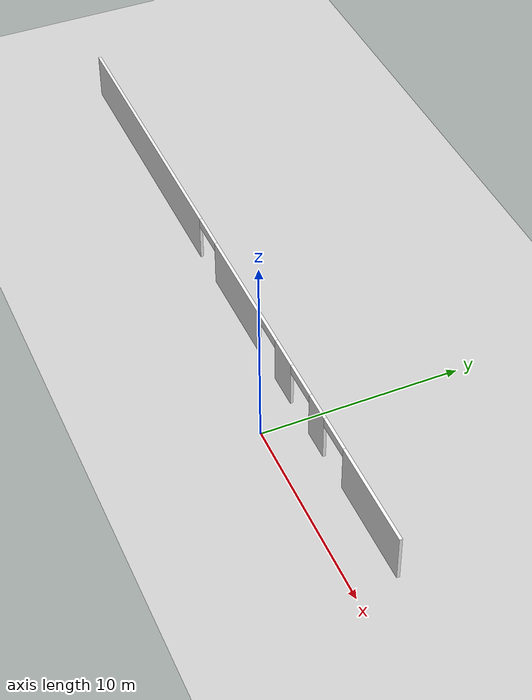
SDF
<sdf version="1.6">
 <world name="default">
  <model name="ground_plane">
   <static>1</static>
   <link name="link">
    <collision name="collision">
     <geometry><plane><normal>0 0 1</normal><size>5000 5000</size></plane></geometry>
     <surface><friction><ode><mu>1</mu><mu2>2</mu2></ode></friction></surface>
    </collision>
    <visual name="runway">
     <cast_shadows>0</cast_shadows>
     <geometry><plane><normal>0 0 1</normal><size>700 700</size></plane></geometry>
     <material>
      <script><uri>file://media/materials/scripts/gazebo.material</uri><name>Gazebo/Gray</name></script>
     </material>
    </visual>
   </link>
  </model>
  <model name="wall_with_door">
   <link name="Wall_2">
    <inertial>
     <mass>1</mass>
     <inertia><ixx>1</ixx><ixy>0</ixy><ixz>0</ixz><iyy>1</iyy><iyz>0</iyz><izz>1</izz></inertia>
    </inertial>
    <visual name="Wall_2_Visual_3">
     <pose>-20.8175 0 1.25 0 -0 0</pose>
     <geometry><box><size>1.549 0.15 2.5</size></box></geometry>
     <material>
      <script>
       <uri>model://floor/materials/scripts</uri>
       <uri>model://floor/materials/textures</uri>
       <name>floor</name>
      </script>
      <ambient>1 1 1 1</ambient>
      <shader type="vertex"><normal_map>__default__</normal_map></shader>
      <diffuse>1 1 1 1</diffuse>
      <specular>0 0 0 1</specular>
      <emissive>0 0 0 1</emissive>
     </material>
     <meta><layer>0</layer></meta>
    </visual>
    <visual name="Door_2_Visual_0">
     <pose>-33.729 0 2.25 0 -0 0</pose>
     <geometry><box><size>2 0.15 0.5</size></box></geometry>
     <material>
      <script>
       <uri>model://floor/materials/scripts</uri>
       <uri>model://floor/materials/textures</uri>
       <name>floor</name>
      </script>
      <ambient>1 1 1 1</ambient>
      <shader type="vertex"><normal_map>__default__</normal_map></shader>
      <diffuse>1 1 1 1</diffuse>
      <specular>0 0 0 1</specular>
      <emissive>0 0 0 1</emissive>
     </material>
     <meta><layer>0</layer></meta>
    </visual>
    <visual name="Door_2_Visual_2">
     <pose>-22.592 0 2.25 0 -0 0</pose>
     <geometry><box><size>2 0.15 0.5</size></box></geometry>
     <material>
      <script>
       <uri>model://floor/materials/scripts</uri>
       <uri>model://floor/materials/textures</uri>
       <name>floor</name>
      </script>
      <ambient>1 1 1 1</ambient>
      <shader type="vertex"><normal_map>__default__</normal_map></shader>
      <diffuse>1 1 1 1</diffuse>
      <specular>0 0 0 1</specular>
      <emissive>0 0 0 1</emissive>
     </material>
     <meta><layer>0</layer></meta>
    </visual>
    <visual name="Door_2_Visual_1">
     <pose>-26.352 0 2.25 0 -0 0</pose>
     <geometry><box><size>2 0.15 0.5</size></box></geometry>
     <material>
      <script>
       <uri>model://floor/materials/scripts</uri>
       <uri>model://floor/materials/textures</uri>
       <name>floor</name>
      </script>
      <ambient>1 1 1 1</ambient>
      <shader type="vertex"><normal_map>__default__</normal_map></shader>
      <diffuse>1 1 1 1</diffuse>
      <specular>0 0 0 1</specular>
      <emissive>0 0 0 1</emissive>
     </material>
     <meta><layer>0</layer></meta>
    </visual>
    <visual name="Wall_2_Visual_0">
     <pose>-42.3645 0 1.25 0 -0 0</pose>
     <geometry><box><size>15.271 0.15 2.5</size></box></geometry>
     <material>
      <script>
       <uri>model://floor/materials/scripts</uri>
       <uri>model://floor/materials/textures</uri>
       <name>floor</name>
      </script>
      <ambient>1 1 1 1</ambient>
      <shader type="vertex"><normal_map>__default__</normal_map></shader>
      <diffuse>1 1 1 1</diffuse>
      <specular>0 0 0 1</specular>
      <emissive>0 0 0 1</emissive>
     </material>
     <meta><layer>0</layer></meta>
    </visual>
    <visual name="Wall_2_Visual_2">
     <pose>-24.472 0 1.25 0 -0 0</pose>
     <geometry><box><size>1.76 0.15 2.5</size></box></geometry>
     <material>
      <script>
       <uri>model://floor/materials/scripts</uri>
       <uri>model://floor/materials/textures</uri>
       <name>floor</name>
      </script>
      <ambient>1 1 1 1</ambient>
      <shader type="vertex"><normal_map>__default__</normal_map></shader>
      <diffuse>1 1 1 1</diffuse>
      <specular>0 0 0 1</specular>
      <emissive>0 0 0 1</emissive>
     </material>
     <meta><layer>0</layer></meta>
    </visual>
    <visual name="ModelPreview_10::Wall_2::visual_19">
     <pose>-15.4 0 1.25 0 -0 0</pose>
     <geometry><box><size>5.377 0.15 2.5</size></box></geometry>
     <material>
      <script>
       <uri>model://floor/materials/scripts</uri>
       <uri>model://floor/materials/textures</uri>
       <name>floor</name>
      </script>
      <ambient>1 1 1 1</ambient>
      <shader type="vertex"><normal_map>__default__</normal_map></shader>
      <diffuse>1 1 1 1</diffuse>
      <specular>0 0 0 1</specular>
      <emissive>0 0 0 1</emissive>
     </material>
     <meta><layer>0</layer></meta>
    </visual>
    <visual name="Door_2_Visual_3">
     <pose>-19.043 0 2.25 0 -0 0</pose>
     <geometry><box><size>2 0.15 0.5</size></box></geometry>
     <material>
      <script>
       <uri>model://floor/materials/scripts</uri>
       <uri>model://floor/materials/textures</uri>
       <name>floor</name>
      </script>
      <ambient>1 1 1 1</ambient>
      <shader type="vertex"><normal_map>__default__</normal_map></shader>
      <diffuse>1 1 1 1</diffuse>
      <specular>0 0 0 1</specular>
      <emissive>0 0 0 1</emissive>
     </material>
     <meta><layer>0</layer></meta>
    </visual>
    <visual name="Wall_2_Visual_1">
     <pose>-30.0405 0 1.25 0 -0 0</pose>
     <geometry><box><size>5.377 0.15 2.5</size></box></geometry>
     <material>
      <script>
       <uri>model://floor/materials/scripts</uri>
       <uri>model://floor/materials/textures</uri>
       <name>floor</name>
      </script>
      <ambient>1 1 1 1</ambient>
      <shader type="vertex"><normal_map>__default__</normal_map></shader>
      <diffuse>1 1 1 1</diffuse>
      <specular>0 0 0 1</specular>
      <emissive>0 0 0 1</emissive>
     </material>
     <meta><layer>0</layer></meta>
    </visual>
    <collision name="Wall_2_Collision_2">
     <pose>-24.472 0 1.25 0 -0 0</pose>
     <geometry><box><size>1.76 0.15 2.5</size></box></geometry>
     <surface>
      <friction>
       <ode><mu>1</mu><mu2>1</mu2><fdir1>0 0 0</fdir1><slip1>0</slip1><slip2>0</slip2></ode>
       <torsional>
        <coefficient>1</coefficient>
        <patch_radius>0</patch_radius>
        <surface_radius>0</surface_radius>
        <use_patch_radius>1</use_patch_radius>
        <ode><slip>0</slip></ode>
       </torsional>
      </friction>
      <bounce><restitution_coefficient>0</restitution_coefficient><threshold>1e+06</threshold></bounce>
      <contact>
       <collide_without_contact>0</collide_without_contact>
       <collide_without_contact_bitmask>1</collide_without_contact_bitmask>
       <collide_bitmask>1</collide_bitmask>
       <ode>
        <soft_cfm>0</soft_cfm>
        <soft_erp>0.2</soft_erp>
        <kp>1e+13</kp>
        <kd>1</kd>
        <max_vel>0.01</max_vel>
        <min_depth>0</min_depth>
       </ode>
       <bullet>
        <split_impulse>1</split_impulse>
        <split_impulse_penetration_threshold>-0.01</split_impulse_penetration_threshold>
        <soft_cfm>0</soft_cfm>
        <soft_erp>0.2</soft_erp>
        <kp>1e+13</kp>
        <kd>1</kd>
       </bullet>
      </contact>
     </surface>
    </collision>
    <collision name="Wall_2_Collision_9">
     <pose>50.4005 0 1.25 0 -0 0</pose>
     <geometry><box><size>5.395 0.15 2.5</size></box></geometry>
     <surface>
      <friction>
       <ode><mu>1</mu><mu2>1</mu2><fdir1>0 0 0</fdir1><slip1>0</slip1><slip2>0</slip2></ode>
       <torsional>
        <coefficient>1</coefficient>
        <patch_radius>0</patch_radius>
        <surface_radius>0</surface_radius>
        <use_patch_radius>1</use_patch_radius>
        <ode><slip>0</slip></ode>
       </torsional>
      </friction>
      <bounce><restitution_coefficient>0</restitution_coefficient><threshold>1e+06</threshold></bounce>
      <contact>
       <collide_without_contact>0</collide_without_contact>
       <collide_without_contact_bitmask>1</collide_without_contact_bitmask>
       <collide_bitmask>1</collide_bitmask>
       <ode>
        <soft_cfm>0</soft_cfm>
        <soft_erp>0.2</soft_erp>
        <kp>1e+13</kp>
        <kd>1</kd>
        <max_vel>0.01</max_vel>
        <min_depth>0</min_depth>
       </ode>
       <bullet>
        <split_impulse>1</split_impulse>
        <split_impulse_penetration_threshold>-0.01</split_impulse_penetration_threshold>
        <soft_cfm>0</soft_cfm>
        <soft_erp>0.2</soft_erp>
        <kp>1e+13</kp>
        <kd>1</kd>
       </bullet>
      </contact>
     </surface>
    </collision>
    <collision name="Wall_2_Collision_8">
     <pose>45.239 0 1.25 0 -0 0</pose>
     <geometry><box><size>0.928 0.15 2.5</size></box></geometry>
     <surface>
      <friction>
       <ode><mu>1</mu><mu2>1</mu2><fdir1>0 0 0</fdir1><slip1>0</slip1><slip2>0</slip2></ode>
       <torsional>
        <coefficient>1</coefficient>
        <patch_radius>0</patch_radius>
        <surface_radius>0</surface_radius>
        <use_patch_radius>1</use_patch_radius>
        <ode><slip>0</slip></ode>
       </torsional>
      </friction>
      <bounce><restitution_coefficient>0</restitution_coefficient><threshold>1e+06</threshold></bounce>
      <contact>
       <collide_without_contact>0</collide_without_contact>
       <collide_without_contact_bitmask>1</collide_without_contact_bitmask>
       <collide_bitmask>1</collide_bitmask>
       <ode>
        <soft_cfm>0</soft_cfm>
        <soft_erp>0.2</soft_erp>
        <kp>1e+13</kp>
        <kd>1</kd>
        <max_vel>0.01</max_vel>
        <min_depth>0</min_depth>
       </ode>
       <bullet>
        <split_impulse>1</split_impulse>
        <split_impulse_penetration_threshold>-0.01</split_impulse_penetration_threshold>
        <soft_cfm>0</soft_cfm>
        <soft_erp>0.2</soft_erp>
        <kp>1e+13</kp>
        <kd>1</kd>
       </bullet>
      </contact>
     </surface>
    </collision>
    <collision name="Wall_2_Collision_3">
     <pose>-20.8175 0 1.25 0 -0 0</pose>
     <geometry><box><size>1.549 0.15 2.5</size></box></geometry>
     <surface>
      <friction>
       <ode><mu>1</mu><mu2>1</mu2><fdir1>0 0 0</fdir1><slip1>0</slip1><slip2>0</slip2></ode>
       <torsional>
        <coefficient>1</coefficient>
        <patch_radius>0</patch_radius>
        <surface_radius>0</surface_radius>
        <use_patch_radius>1</use_patch_radius>
        <ode><slip>0</slip></ode>
       </torsional>
      </friction>
      <bounce><restitution_coefficient>0</restitution_coefficient><threshold>1e+06</threshold></bounce>
      <contact>
       <collide_without_contact>0</collide_without_contact>
       <collide_without_contact_bitmask>1</collide_without_contact_bitmask>
       <collide_bitmask>1</collide_bitmask>
       <ode>
        <soft_cfm>0</soft_cfm>
        <soft_erp>0.2</soft_erp>
        <kp>1e+13</kp>
        <kd>1</kd>
        <max_vel>0.01</max_vel>
        <min_depth>0</min_depth>
       </ode>
       <bullet>
        <split_impulse>1</split_impulse>
        <split_impulse_penetration_threshold>-0.01</split_impulse_penetration_threshold>
        <soft_cfm>0</soft_cfm>
        <soft_erp>0.2</soft_erp>
        <kp>1e+13</kp>
        <kd>1</kd>
       </bullet>
      </contact>
     </surface>
    </collision>
    <collision name="Wall_2_Collision_5">
     <pose>26.519 0 1.25 0 -0 0</pose>
     <geometry><box><size>4.382 0.15 2.5</size></box></geometry>
     <surface>
      <friction>
       <ode><mu>1</mu><mu2>1</mu2><fdir1>0 0 0</fdir1><slip1>0</slip1><slip2>0</slip2></ode>
       <torsional>
        <coefficient>1</coefficient>
        <patch_radius>0</patch_radius>
        <surface_radius>0</surface_radius>
        <use_patch_radius>1</use_patch_radius>
        <ode><slip>0</slip></ode>
       </torsional>
      </friction>
      <bounce><restitution_coefficient>0</restitution_coefficient><threshold>1e+06</threshold></bounce>
      <contact>
       <collide_without_contact>0</collide_without_contact>
       <collide_without_contact_bitmask>1</collide_without_contact_bitmask>
       <collide_bitmask>1</collide_bitmask>
       <ode>
        <soft_cfm>0</soft_cfm>
        <soft_erp>0.2</soft_erp>
        <kp>1e+13</kp>
        <kd>1</kd>
        <max_vel>0.01</max_vel>
        <min_depth>0</min_depth>
       </ode>
       <bullet>
        <split_impulse>1</split_impulse>
        <split_impulse_penetration_threshold>-0.01</split_impulse_penetration_threshold>
        <soft_cfm>0</soft_cfm>
        <soft_erp>0.2</soft_erp>
        <kp>1e+13</kp>
        <kd>1</kd>
       </bullet>
      </contact>
     </surface>
    </collision>
    <collision name="Wall_2_Collision_6">
     <pose>35.369 0 1.25 0 -0 0</pose>
     <geometry><box><size>9.318 0.15 2.5</size></box></geometry>
     <surface>
      <friction>
       <ode><mu>1</mu><mu2>1</mu2><fdir1>0 0 0</fdir1><slip1>0</slip1><slip2>0</slip2></ode>
       <torsional>
        <coefficient>1</coefficient>
        <patch_radius>0</patch_radius>
        <surface_radius>0</surface_radius>
        <use_patch_radius>1</use_patch_radius>
        <ode><slip>0</slip></ode>
       </torsional>
      </friction>
      <bounce><restitution_coefficient>0</restitution_coefficient><threshold>1e+06</threshold></bounce>
      <contact>
       <collide_without_contact>0</collide_without_contact>
       <collide_without_contact_bitmask>1</collide_without_contact_bitmask>
       <collide_bitmask>1</collide_bitmask>
       <ode>
        <soft_cfm>0</soft_cfm>
        <soft_erp>0.2</soft_erp>
        <kp>1e+13</kp>
        <kd>1</kd>
        <max_vel>0.01</max_vel>
        <min_depth>0</min_depth>
       </ode>
       <bullet>
        <split_impulse>1</split_impulse>
        <split_impulse_penetration_threshold>-0.01</split_impulse_penetration_threshold>
        <soft_cfm>0</soft_cfm>
        <soft_erp>0.2</soft_erp>
        <kp>1e+13</kp>
        <kd>1</kd>
       </bullet>
      </contact>
     </surface>
    </collision>
    <collision name="Wall_2_Collision_4">
     <pose>2.1425 0 1.25 0 -0 0</pose>
     <geometry><box><size>40.371 0.15 2.5</size></box></geometry>
     <surface>
      <friction>
       <ode><mu>1</mu><mu2>1</mu2><fdir1>0 0 0</fdir1><slip1>0</slip1><slip2>0</slip2></ode>
       <torsional>
        <coefficient>1</coefficient>
        <patch_radius>0</patch_radius>
        <surface_radius>0</surface_radius>
        <use_patch_radius>1</use_patch_radius>
        <ode><slip>0</slip></ode>
       </torsional>
      </friction>
      <bounce><restitution_coefficient>0</restitution_coefficient><threshold>1e+06</threshold></bounce>
      <contact>
       <collide_without_contact>0</collide_without_contact>
       <collide_without_contact_bitmask>1</collide_without_contact_bitmask>
       <collide_bitmask>1</collide_bitmask>
       <ode>
        <soft_cfm>0</soft_cfm>
        <soft_erp>0.2</soft_erp>
        <kp>1e+13</kp>
        <kd>1</kd>
        <max_vel>0.01</max_vel>
        <min_depth>0</min_depth>
       </ode>
       <bullet>
        <split_impulse>1</split_impulse>
        <split_impulse_penetration_threshold>-0.01</split_impulse_penetration_threshold>
        <soft_cfm>0</soft_cfm>
        <soft_erp>0.2</soft_erp>
        <kp>1e+13</kp>
        <kd>1</kd>
       </bullet>
      </contact>
     </surface>
    </collision>
    <collision name="Wall_2_Collision_0">
     <pose>-42.3645 0 1.25 0 -0 0</pose>
     <geometry><box><size>15.271 0.15 2.5</size></box></geometry>
     <surface>
      <friction>
       <ode><mu>1</mu><mu2>1</mu2><fdir1>0 0 0</fdir1><slip1>0</slip1><slip2>0</slip2></ode>
       <torsional>
        <coefficient>1</coefficient>
        <patch_radius>0</patch_radius>
        <surface_radius>0</surface_radius>
        <use_patch_radius>1</use_patch_radius>
        <ode><slip>0</slip></ode>
       </torsional>
      </friction>
      <bounce><restitution_coefficient>0</restitution_coefficient><threshold>1e+06</threshold></bounce>
      <contact>
       <collide_without_contact>0</collide_without_contact>
       <collide_without_contact_bitmask>1</collide_without_contact_bitmask>
       <collide_bitmask>1</collide_bitmask>
       <ode>
        <soft_cfm>0</soft_cfm>
        <soft_erp>0.2</soft_erp>
        <kp>1e+13</kp>
        <kd>1</kd>
        <max_vel>0.01</max_vel>
        <min_depth>0</min_depth>
       </ode>
       <bullet>
        <split_impulse>1</split_impulse>
        <split_impulse_penetration_threshold>-0.01</split_impulse_penetration_threshold>
        <soft_cfm>0</soft_cfm>
        <soft_erp>0.2</soft_erp>
        <kp>1e+13</kp>
        <kd>1</kd>
       </bullet>
      </contact>
     </surface>
    </collision>
    <collision name="Wall_2_Collision_7">
     <pose>42.4015 0 1.25 0 -0 0</pose>
     <geometry><box><size>0.747 0.15 2.5</size></box></geometry>
     <surface>
      <friction>
       <ode><mu>1</mu><mu2>1</mu2><fdir1>0 0 0</fdir1><slip1>0</slip1><slip2>0</slip2></ode>
       <torsional>
        <coefficient>1</coefficient>
        <patch_radius>0</patch_radius>
        <surface_radius>0</surface_radius>
        <use_patch_radius>1</use_patch_radius>
        <ode><slip>0</slip></ode>
       </torsional>
      </friction>
      <bounce><restitution_coefficient>0</restitution_coefficient><threshold>1e+06</threshold></bounce>
      <contact>
       <collide_without_contact>0</collide_without_contact>
       <collide_without_contact_bitmask>1</collide_without_contact_bitmask>
       <collide_bitmask>1</collide_bitmask>
       <ode>
        <soft_cfm>0</soft_cfm>
        <soft_erp>0.2</soft_erp>
        <kp>1e+13</kp>
        <kd>1</kd>
        <max_vel>0.01</max_vel>
        <min_depth>0</min_depth>
       </ode>
       <bullet>
        <split_impulse>1</split_impulse>
        <split_impulse_penetration_threshold>-0.01</split_impulse_penetration_threshold>
        <soft_cfm>0</soft_cfm>
        <soft_erp>0.2</soft_erp>
        <kp>1e+13</kp>
        <kd>1</kd>
       </bullet>
      </contact>
     </surface>
    </collision>
    <collision name="Wall_2_Collision_1">
     <pose>-30.0405 0 1.25 0 -0 0</pose>
     <geometry><box><size>5.377 0.15 2.5</size></box></geometry>
     <surface>
      <friction>
       <ode><mu>1</mu><mu2>1</mu2><fdir1>0 0 0</fdir1><slip1>0</slip1><slip2>0</slip2></ode>
       <torsional>
        <coefficient>1</coefficient>
        <patch_radius>0</patch_radius>
        <surface_radius>0</surface_radius>
        <use_patch_radius>1</use_patch_radius>
        <ode><slip>0</slip></ode>
       </torsional>
      </friction>
      <bounce><restitution_coefficient>0</restitution_coefficient><threshold>1e+06</threshold></bounce>
      <contact>
       <collide_without_contact>0</collide_without_contact>
       <collide_without_contact_bitmask>1</collide_without_contact_bitmask>
       <collide_bitmask>1</collide_bitmask>
       <ode>
        <soft_cfm>0</soft_cfm>
        <soft_erp>0.2</soft_erp>
        <kp>1e+13</kp>
        <kd>1</kd>
        <max_vel>0.01</max_vel>
        <min_depth>0</min_depth>
       </ode>
       <bullet>
        <split_impulse>1</split_impulse>
        <split_impulse_penetration_threshold>-0.01</split_impulse_penetration_threshold>
        <soft_cfm>0</soft_cfm>
        <soft_erp>0.2</soft_erp>
        <kp>1e+13</kp>
        <kd>1</kd>
       </bullet>
      </contact>
     </surface>
    </collision>
    <collision name="Door_2_Collision_0">
     <pose>-33.729 0 2.25 0 -0 0</pose>
     <geometry><box><size>2 0.15 0.5</size></box></geometry>
     <surface>
      <friction>
       <ode><mu>1</mu><mu2>1</mu2><fdir1>0 0 0</fdir1><slip1>0</slip1><slip2>0</slip2></ode>
       <torsional>
        <coefficient>1</coefficient>
        <patch_radius>0</patch_radius>
        <surface_radius>0</surface_radius>
        <use_patch_radius>1</use_patch_radius>
        <ode><slip>0</slip></ode>
       </torsional>
      </friction>
      <bounce><restitution_coefficient>0</restitution_coefficient><threshold>1e+06</threshold></bounce>
      <contact>
       <collide_without_contact>0</collide_without_contact>
       <collide_without_contact_bitmask>1</collide_without_contact_bitmask>
       <collide_bitmask>1</collide_bitmask>
       <ode>
        <soft_cfm>0</soft_cfm>
        <soft_erp>0.2</soft_erp>
        <kp>1e+13</kp>
        <kd>1</kd>
        <max_vel>0.01</max_vel>
        <min_depth>0</min_depth>
       </ode>
       <bullet>
        <split_impulse>1</split_impulse>
        <split_impulse_penetration_threshold>-0.01</split_impulse_penetration_threshold>
        <soft_cfm>0</soft_cfm>
        <soft_erp>0.2</soft_erp>
        <kp>1e+13</kp>
        <kd>1</kd>
       </bullet>
      </contact>
     </surface>
    </collision>
    <collision name="Door_2_Collision_1">
     <pose>-26.352 0 2.25 0 -0 0</pose>
     <geometry><box><size>2 0.15 0.5</size></box></geometry>
     <surface>
      <friction>
       <ode><mu>1</mu><mu2>1</mu2><fdir1>0 0 0</fdir1><slip1>0</slip1><slip2>0</slip2></ode>
       <torsional>
        <coefficient>1</coefficient>
        <patch_radius>0</patch_radius>
        <surface_radius>0</surface_radius>
        <use_patch_radius>1</use_patch_radius>
        <ode><slip>0</slip></ode>
       </torsional>
      </friction>
      <bounce><restitution_coefficient>0</restitution_coefficient><threshold>1e+06</threshold></bounce>
      <contact>
       <collide_without_contact>0</collide_without_contact>
       <collide_without_contact_bitmask>1</collide_without_contact_bitmask>
       <collide_bitmask>1</collide_bitmask>
       <ode>
        <soft_cfm>0</soft_cfm>
        <soft_erp>0.2</soft_erp>
        <kp>1e+13</kp>
        <kd>1</kd>
        <max_vel>0.01</max_vel>
        <min_depth>0</min_depth>
       </ode>
       <bullet>
        <split_impulse>1</split_impulse>
        <split_impulse_penetration_threshold>-0.01</split_impulse_penetration_threshold>
        <soft_cfm>0</soft_cfm>
        <soft_erp>0.2</soft_erp>
        <kp>1e+13</kp>
        <kd>1</kd>
       </bullet>
      </contact>
     </surface>
    </collision>
    <collision name="Door_2_Collision_2">
     <pose>-22.592 0 2.25 0 -0 0</pose>
     <geometry><box><size>2 0.15 0.5</size></box></geometry>
     <surface>
      <friction>
       <ode><mu>1</mu><mu2>1</mu2><fdir1>0 0 0</fdir1><slip1>0</slip1><slip2>0</slip2></ode>
       <torsional>
        <coefficient>1</coefficient>
        <patch_radius>0</patch_radius>
        <surface_radius>0</surface_radius>
        <use_patch_radius>1</use_patch_radius>
        <ode><slip>0</slip></ode>
       </torsional>
      </friction>
      <bounce><restitution_coefficient>0</restitution_coefficient><threshold>1e+06</threshold></bounce>
      <contact>
       <collide_without_contact>0</collide_without_contact>
       <collide_without_contact_bitmask>1</collide_without_contact_bitmask>
       <collide_bitmask>1</collide_bitmask>
       <ode>
        <soft_cfm>0</soft_cfm>
        <soft_erp>0.2</soft_erp>
        <kp>1e+13</kp>
        <kd>1</kd>
        <max_vel>0.01</max_vel>
        <min_depth>0</min_depth>
       </ode>
       <bullet>
        <split_impulse>1</split_impulse>
        <split_impulse_penetration_threshold>-0.01</split_impulse_penetration_threshold>
        <soft_cfm>0</soft_cfm>
        <soft_erp>0.2</soft_erp>
        <kp>1e+13</kp>
        <kd>1</kd>
       </bullet>
      </contact>
     </surface>
    </collision>
    <collision name="Door_2_Collision_3">
     <pose>-19.043 0 2.25 0 -0 0</pose>
     <geometry><box><size>2 0.15 0.5</size></box></geometry>
     <surface>
      <friction>
       <ode><mu>1</mu><mu2>1</mu2><fdir1>0 0 0</fdir1><slip1>0</slip1><slip2>0</slip2></ode>
       <torsional>
        <coefficient>1</coefficient>
        <patch_radius>0</patch_radius>
        <surface_radius>0</surface_radius>
        <use_patch_radius>1</use_patch_radius>
        <ode><slip>0</slip></ode>
       </torsional>
      </friction>
      <bounce><restitution_coefficient>0</restitution_coefficient><threshold>1e+06</threshold></bounce>
      <contact>
       <collide_without_contact>0</collide_without_contact>
       <collide_without_contact_bitmask>1</collide_without_contact_bitmask>
       <collide_bitmask>1</collide_bitmask>
       <ode>
        <soft_cfm>0</soft_cfm>
        <soft_erp>0.2</soft_erp>
        <kp>1e+13</kp>
        <kd>1</kd>
        <max_vel>0.01</max_vel>
        <min_depth>0</min_depth>
       </ode>
       <bullet>
        <split_impulse>1</split_impulse>
        <split_impulse_penetration_threshold>-0.01</split_impulse_penetration_threshold>
        <soft_cfm>0</soft_cfm>
        <soft_erp>0.2</soft_erp>
        <kp>1e+13</kp>
        <kd>1</kd>
       </bullet>
      </contact>
     </surface>
    </collision>
    <collision name="Door_2_Collision_4">
     <pose>23.328 0 2.25 0 -0 0</pose>
     <geometry><box><size>2 0.15 0.5</size></box></geometry>
     <surface>
      <friction>
       <ode><mu>1</mu><mu2>1</mu2><fdir1>0 0 0</fdir1><slip1>0</slip1><slip2>0</slip2></ode>
       <torsional>
        <coefficient>1</coefficient>
        <patch_radius>0</patch_radius>
        <surface_radius>0</surface_radius>
        <use_patch_radius>1</use_patch_radius>
        <ode><slip>0</slip></ode>
       </torsional>
      </friction>
      <bounce><restitution_coefficient>0</restitution_coefficient><threshold>1e+06</threshold></bounce>
      <contact>
       <collide_without_contact>0</collide_without_contact>
       <collide_without_contact_bitmask>1</collide_without_contact_bitmask>
       <collide_bitmask>1</collide_bitmask>
       <ode>
        <soft_cfm>0</soft_cfm>
        <soft_erp>0.2</soft_erp>
        <kp>1e+13</kp>
        <kd>1</kd>
        <max_vel>0.01</max_vel>
        <min_depth>0</min_depth>
       </ode>
       <bullet>
        <split_impulse>1</split_impulse>
        <split_impulse_penetration_threshold>-0.01</split_impulse_penetration_threshold>
        <soft_cfm>0</soft_cfm>
        <soft_erp>0.2</soft_erp>
        <kp>1e+13</kp>
        <kd>1</kd>
       </bullet>
      </contact>
     </surface>
    </collision>
    <collision name="Door_2_Collision_5">
     <pose>29.71 0 2.25 0 -0 0</pose>
     <geometry><box><size>2 0.15 0.5</size></box></geometry>
     <surface>
      <friction>
       <ode><mu>1</mu><mu2>1</mu2><fdir1>0 0 0</fdir1><slip1>0</slip1><slip2>0</slip2></ode>
       <torsional>
        <coefficient>1</coefficient>
        <patch_radius>0</patch_radius>
        <surface_radius>0</surface_radius>
        <use_patch_radius>1</use_patch_radius>
        <ode><slip>0</slip></ode>
       </torsional>
      </friction>
      <bounce><restitution_coefficient>0</restitution_coefficient><threshold>1e+06</threshold></bounce>
      <contact>
       <collide_without_contact>0</collide_without_contact>
       <collide_without_contact_bitmask>1</collide_without_contact_bitmask>
       <collide_bitmask>1</collide_bitmask>
       <ode>
        <soft_cfm>0</soft_cfm>
        <soft_erp>0.2</soft_erp>
        <kp>1e+13</kp>
        <kd>1</kd>
        <max_vel>0.01</max_vel>
        <min_depth>0</min_depth>
       </ode>
       <bullet>
        <split_impulse>1</split_impulse>
        <split_impulse_penetration_threshold>-0.01</split_impulse_penetration_threshold>
        <soft_cfm>0</soft_cfm>
        <soft_erp>0.2</soft_erp>
        <kp>1e+13</kp>
        <kd>1</kd>
       </bullet>
      </contact>
     </surface>
    </collision>
    <collision name="Door_2_Collision_6">
     <pose>41.028 0 2.25 0 -0 0</pose>
     <geometry><box><size>2 0.15 0.5</size></box></geometry>
     <surface>
      <friction>
       <ode><mu>1</mu><mu2>1</mu2><fdir1>0 0 0</fdir1><slip1>0</slip1><slip2>0</slip2></ode>
       <torsional>
        <coefficient>1</coefficient>
        <patch_radius>0</patch_radius>
        <surface_radius>0</surface_radius>
        <use_patch_radius>1</use_patch_radius>
        <ode><slip>0</slip></ode>
       </torsional>
      </friction>
      <bounce><restitution_coefficient>0</restitution_coefficient><threshold>1e+06</threshold></bounce>
      <contact>
       <collide_without_contact>0</collide_without_contact>
       <collide_without_contact_bitmask>1</collide_without_contact_bitmask>
       <collide_bitmask>1</collide_bitmask>
       <ode>
        <soft_cfm>0</soft_cfm>
        <soft_erp>0.2</soft_erp>
        <kp>1e+13</kp>
        <kd>1</kd>
        <max_vel>0.01</max_vel>
        <min_depth>0</min_depth>
       </ode>
       <bullet>
        <split_impulse>1</split_impulse>
        <split_impulse_penetration_threshold>-0.01</split_impulse_penetration_threshold>
        <soft_cfm>0</soft_cfm>
        <soft_erp>0.2</soft_erp>
        <kp>1e+13</kp>
        <kd>1</kd>
       </bullet>
      </contact>
     </surface>
    </collision>
    <collision name="Door_2_Collision_7">
     <pose>43.775 0 2.25 0 -0 0</pose>
     <geometry><box><size>2 0.15 0.5</size></box></geometry>
     <surface>
      <friction>
       <ode><mu>1</mu><mu2>1</mu2><fdir1>0 0 0</fdir1><slip1>0</slip1><slip2>0</slip2></ode>
       <torsional>
        <coefficient>1</coefficient>
        <patch_radius>0</patch_radius>
        <surface_radius>0</surface_radius>
        <use_patch_radius>1</use_patch_radius>
        <ode><slip>0</slip></ode>
       </torsional>
      </friction>
      <bounce><restitution_coefficient>0</restitution_coefficient><threshold>1e+06</threshold></bounce>
      <contact>
       <collide_without_contact>0</collide_without_contact>
       <collide_without_contact_bitmask>1</collide_without_contact_bitmask>
       <collide_bitmask>1</collide_bitmask>
       <ode>
        <soft_cfm>0</soft_cfm>
        <soft_erp>0.2</soft_erp>
        <kp>1e+13</kp>
        <kd>1</kd>
        <max_vel>0.01</max_vel>
        <min_depth>0</min_depth>
       </ode>
       <bullet>
        <split_impulse>1</split_impulse>
        <split_impulse_penetration_threshold>-0.01</split_impulse_penetration_threshold>
        <soft_cfm>0</soft_cfm>
        <soft_erp>0.2</soft_erp>
        <kp>1e+13</kp>
        <kd>1</kd>
       </bullet>
      </contact>
     </surface>
    </collision>
    <collision name="Door_2_Collision_8">
     <pose>46.703 0 2.25 0 -0 0</pose>
     <geometry><box><size>2 0.15 0.5</size></box></geometry>
     <surface>
      <friction>
       <ode><mu>1</mu><mu2>1</mu2><fdir1>0 0 0</fdir1><slip1>0</slip1><slip2>0</slip2></ode>
       <torsional>
        <coefficient>1</coefficient>
        <patch_radius>0</patch_radius>
        <surface_radius>0</surface_radius>
        <use_patch_radius>1</use_patch_radius>
        <ode><slip>0</slip></ode>
       </torsional>
      </friction>
      <bounce><restitution_coefficient>0</restitution_coefficient><threshold>1e+06</threshold></bounce>
      <contact>
       <collide_without_contact>0</collide_without_contact>
       <collide_without_contact_bitmask>1</collide_without_contact_bitmask>
       <collide_bitmask>1</collide_bitmask>
       <ode>
        <soft_cfm>0</soft_cfm>
        <soft_erp>0.2</soft_erp>
        <kp>1e+13</kp>
        <kd>1</kd>
        <max_vel>0.01</max_vel>
        <min_depth>0</min_depth>
       </ode>
       <bullet>
        <split_impulse>1</split_impulse>
        <split_impulse_penetration_threshold>-0.01</split_impulse_penetration_threshold>
        <soft_cfm>0</soft_cfm>
        <soft_erp>0.2</soft_erp>
        <kp>1e+13</kp>
        <kd>1</kd>
       </bullet>
      </contact>
     </surface>
    </collision>
   </link>
   <static>1</static>
   <pose>22.4033 2.0777 0 0 -0 0.000505</pose>
  </model>
 </world>
</sdf>
